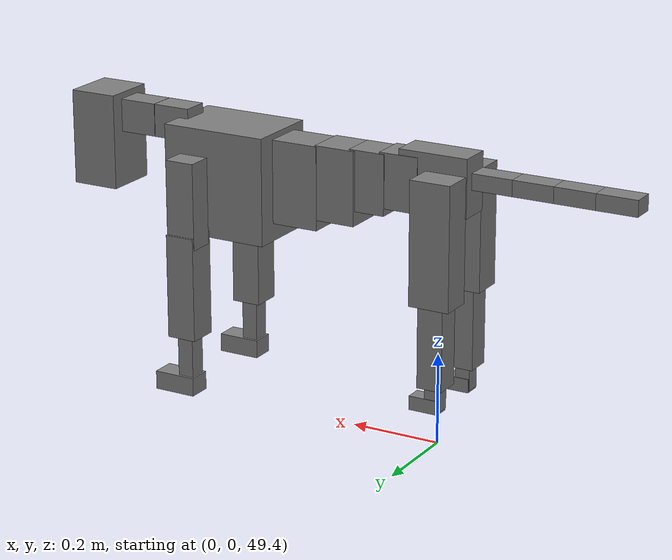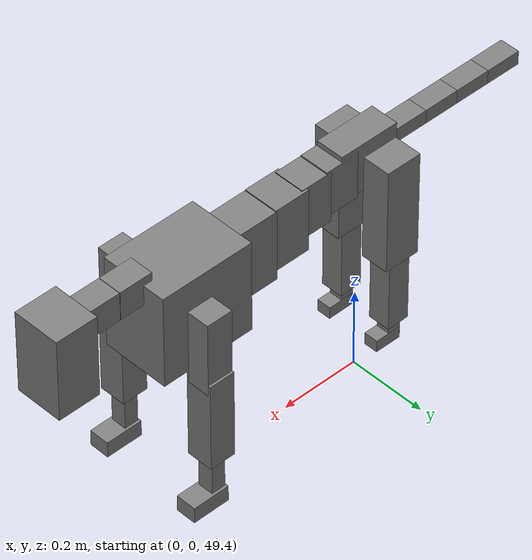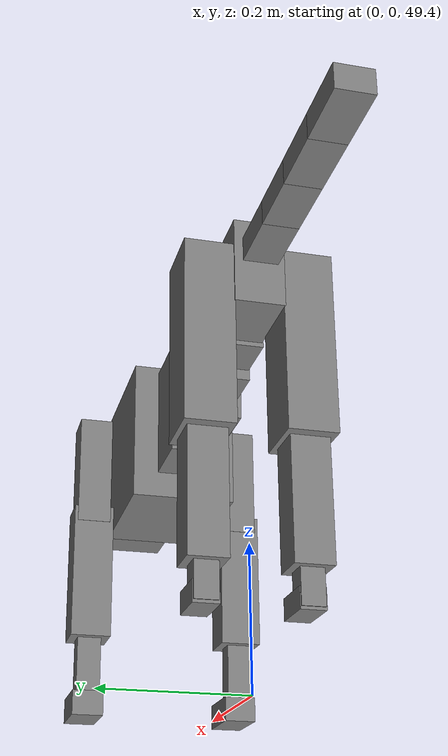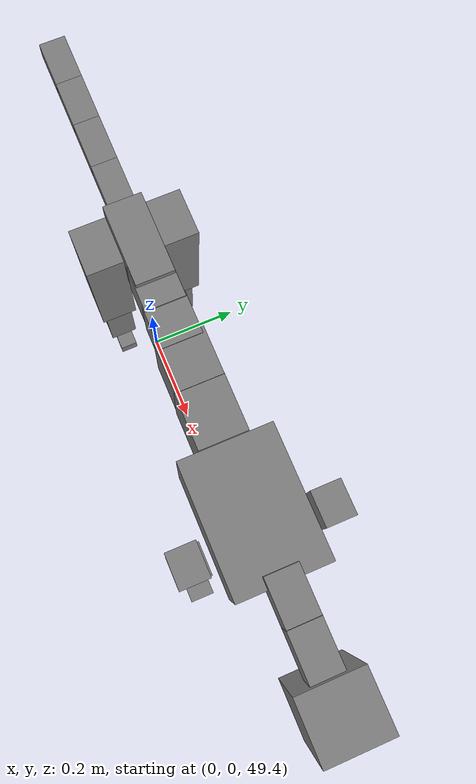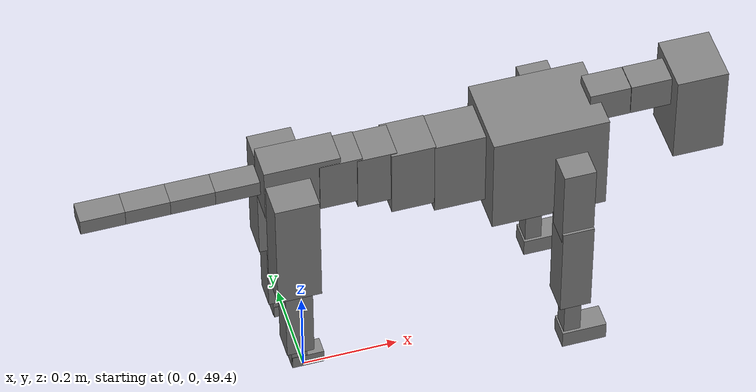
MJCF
<mujoco model="dog">

    <default>
        <joint armature="0.02" stiffness="1" damping="0.2" limited="true"/>
        <geom condim="3" friction="1 0.05 0.05" margin="0.01"/>
        <motor ctrllimited="true" ctrlrange="-1.0 1.0" forcelimited="true" gear="50"/>
    </default>

    <compiler inertiafromgeom="true" angle="radian"/>

    <option timestep="0.016" iterations="50" tolerance="1e-10" solver="Newton" jacobian="dense" cone="pyramidal"/>

    <size nconmax="20000" njmax="60000" nstack="5000000"/>
    <visual>
        <map force="0.1" zfar="30"/>
        <rgba haze="0.15 0.25 0.35 1"/>
        <quality shadowsize="2048"/>
        <global offwidth="800" offheight="800"/>
    </visual>

    <asset>
        <texture type="skybox" builtin="gradient" rgb1="0.3 0.5 0.7" rgb2="0 0 0" width="512" height="512"/>
        <texture name="texplane" type="2d" builtin="checker" rgb1=".2 .3 .4" rgb2=".1 0.15 0.2" width="512" height="512"
                 mark="cross" markrgb=".8 .8 .8"/>
        <texture name="texgeom" type="cube" builtin="flat" mark="cross" width="127" height="1278" rgb1="0.8 0.6 0.4"
                 rgb2="0.8 0.6 0.4" markrgb="1 1 1" random="0.01"/>

        <material name="matplane" reflectance="0.3" texture="texplane" texrepeat="1 1" texuniform="true"/>
        <material name="matgeom" texture="texgeom" texuniform="true" rgba="0.8 0.6 .4 1"/>
    </asset>

    <worldbody>
        <geom name="floor" pos="0 0 0" size="0 0 .25" type="plane" material="matplane" condim="3"/>

        <light directional="false" diffuse=".2 .2 .2" specular="0 0 0" pos="0 0 5" dir="0 0 -1" castshadow="false"/>
        <light mode="targetbodycom" target="torso" directional="false" diffuse=".8 .8 .8" specular="0.3 0.3 0.3"
               pos="0 0 4.0" dir="0 0 -1"/>

        <body name="root" pos="0 0 50">
            <freejoint name="root_1"/>
            <geom type="box" pos="0 0 -0.02" size="0.0774  0.0358  0.063" density="2030"/>

            <body name="spine1" pos="0.054 0 0">
                <joint name="spine1_y" axis="0 1 0" range="0 0.7" limited="true"/>
                <geom type="box" pos="0.02375 0 -0.03" size="0.04375  0.0375  0.05985" density="2030"/>

                <body name="spine2" pos="0.0612 0 0">
                    <joint name="spine2_y" axis="0 1 0" range="-0.15 0.15" limited="true"/>
                    <geom type="box" pos="0.03555  0  -0.04" size="0.04055  0.039  0.06615" density="2030"/>

                    <body name="spine3" pos="0.0730 0 0">
                        <joint name="spine3_y" axis="0 1 0" range="-0.15 0.15" limited="true"/>
                        <geom type="box" pos="0.03555  0  -0.057" size="0.04555  0.0445  0.081" density="2030"/>

                        <body name="spine4" pos="0.0780 0 0">
                            <joint name="spine4_y" axis="0 1 0" range="-0.15 0.15" limited="true"/>
                            <geom type="box" pos="0.05265  0  -0.07" size="0.05265  0.045  0.09135" density="2030"/>

                            <body name="torso" pos="0.1082 0 0">
                                <joint name="torso_y" axis="0 1 0" range="-0.15 0.15" limited="true"/>
                                <geom type="box" pos="0.11925  0  -0.085" size="0.11925  0.085  0.11745"
                                      density="2030"/>

                                <body name="neck1" pos="0.2160  0   0.0180">
                                    <joint name="neck1_y" axis="0 1 0" range="-1.2  -1" limited="true"/>
                                    <geom type="box" pos="0.0423  0  0" size="0.0423  0.03  0.036" density="2325"/>

                                    <body name="neck2" pos="0.0853  0  0">
                                        <joint name="neck2_y" axis="0 1 0" range="0.1  0" limited="true"/>
                                        <geom type="box" pos="0.0423  0  0" size="0.0423  0.03  0.036" density="2325"/>

                                        <body name="head" pos="0.0853  0  0">
                                            <joint name="head_y" axis="0 1 0" range="-0.3  -0.2" limited="true"/>
                                            <geom type="box" pos="0.0531  0  -0.055" size="0.0531  0.06  0.1044"
                                                  density="4030"/>

                                        </body>
                                    </body>
                                </body>

                                <body name="front_shoulder" pos="0.156  0   -0.0480">
                                    <joint name="front_shoulder_y" axis="0 1 0" range="-1 1.5" limited="true"/>
                                    <geom type="box" pos="0 0.13 -0.0681" size="0.0329  0.0281  0.0947" density="1158"/>
                                    <geom type="box" pos="0 -0.13 -0.0681" size="0.0329  0.0281  0.0947"
                                          density="1158"/>

                                    <body name="front_elbow" pos="0  0  -0.1362">
                                        <joint name="front_elbow_y" axis="0 1 0" range="-2 0" limited="true"/>
                                        <geom type="box" pos="0 0.13 -0.1141" size="0.0327  0.0334  0.1141"
                                              density="1081"/>
                                        <geom type="box" pos="0 -0.13 -0.1141" size="0.0327  0.0334  0.1141"
                                              density="1081"/>

                                        <body name="front_wrist" pos="0  0  -0.2282">
                                            <joint name="front_wrist_y" axis="0 1 0" range="-0.2 0" limited="true"/>
                                            <geom type="box" pos="0 0.13 -0.0522" size="0.0177  0.0197  0.0654"
                                                  density="1664"/>
                                            <geom type="box" pos="0 -0.13 -0.0522" size="0.0177  0.0197  0.0654"
                                                  density="1664"/>

                                            <body name="front_finger_end" pos="0  0  -0.1044">
                                                <joint name="front_finger_y" axis="0 1 0" range="-0.4 1"
                                                       limited="true"/>
                                                <geom type="box" pos="0.0256  0.13  -0.0053"
                                                      size="0.0470  0.0256  0.0203" density="1515"/>
                                                <geom type="box" pos="0.0256  -0.13  -0.0053"
                                                      size="0.0470  0.0256  0.0203" density="1515"/>

                                            </body>

                                        </body>
                                    </body>
                                </body>

                            </body>
                        </body>
                    </body>
                </body>
            </body>

            <body name="back_hip" pos="-0.03 0 -0.018">
                <joint name="back_hip_y" axis="0 1 0" range="-1.5 0.3" limited="true"/>
                <geom type="box" pos="0 0.07 -0.1113" size="0.0452  0.0354  0.1341" density="1154"/>
                <geom type="box" pos="0 -0.07 -0.1113" size="0.0452  0.0354  0.1341" density="1154"/>

                <body name="back_knee" pos="0  0  -0.2227">
                    <joint name="back_knee_y" axis="0 1 0" range="0 2.8" limited="true"/>
                    <geom type="box" pos="0 0.07 -0.0923" size="0.0283  0.0279  0.1078" density="1227"/>
                    <geom type="box" pos="0 -0.07 -0.0923" size="0.0283  0.0279  0.1078" density="1227"/>

                    <body name="back_ankle" pos="0  0  -0.1846">
                        <joint name="back_ankle_y" axis="0 1 0" range="-2.2 0" limited="true"/>
                        <geom type="box" pos="0 0.07 -0.0280" size="0.0167  0.0167  0.0392" density="1284"/>
                        <geom type="box" pos="0 -0.07 -0.0280" size="0.0167  0.0167  0.0392" density="1284"/>

                        <body name="back_toe_end" pos="0  0  -0.0560">
                            <joint name="back_toe_y" axis="0 1 0" range="-0.4 1" limited="true"/>
                            <geom type="box" pos="0.0180  0.07  -0.0003" size="0.0331  0.0180  0.0153" density="1515"/>
                            <geom type="box" pos="0.0180  -0.07  -0.0003" size="0.0331  0.0180  0.0153" density="1515"/>

                        </body>
                    </body>
                </body>
            </body>

            <body name="tail1" pos="-0.074 0 -0.006">
                <joint name="tail1_y" axis="0 1 0" range="-0.2 0.2" limited="true"/>
                <geom type="box" pos="-0.0536  0  0" size="0.045  0.025  0.0175" density="1587"/>

                <body name="tail2" pos="-0.09 0 0">
                    <joint name="tail2_y" axis="0 1 0" range="-0.2 0.2" limited="true"/>
                    <geom type="box" pos="-0.0536  0  0" size="0.045  0.025  0.0175" density="1587"/>

                    <body name="tail3" pos="-0.09 0 0">
                        <joint name="tail3_y" axis="0 1 0" range="-0.2 0.2" limited="true"/>
                        <geom type="box" pos="-0.0536  0  0" size="0.045  0.025  0.0175" density="1587"/>

                        <body name="tail4" pos="-0.09 0 0">
                            <joint name="tail4_y" axis="0 1 0" range="-0.2 0.2" limited="true"/>
                            <geom type="box" pos="-0.0536  0  0" size="0.045  0.025  0.0175" density="1587"/>

                        </body>
                    </body>
                </body>
            </body>
        </body>
    </worldbody>

    <actuator>
        <motor joint="spine1_y" forcerange="-150 150     "/>
        <motor joint="spine2_y" forcerange="-150 150     "/>
        <motor joint="spine3_y" forcerange="-150 150     "/>
        <motor joint="spine4_y" forcerange="-150 150     "/>
        <motor joint="torso_y" forcerange="-150 150     "/>
        <motor joint="neck1_y" forcerange="-100 100       "/>
        <motor joint="neck2_y" forcerange="-100 100       "/>
        <motor joint="head_y" forcerange="-150 150       "/>
        <motor joint="front_shoulder_y" forcerange="-177.18 110.41"/>
        <motor joint="front_elbow_y" forcerange="-195.66 147.54"/>
        <motor joint="front_wrist_y" forcerange="-86.32 71.12"/>
        <motor joint="front_finger_y" forcerange="-24.21 72.41"/>
        <motor joint="back_hip_y" forcerange="-323.65 348.94"/>
        <motor joint="back_knee_y" forcerange="-352.02 253.72"/>
        <motor joint="back_angle_y" forcerange="-80.00 87.62"/>
        <motor joint="back_toe_y" forcerange="-40.51 23.84"/>
        <motor joint="tail1_y" forcerange="-50 50     "/>
        <motor joint="tail2_y" forcerange="-50 50     "/>
        <motor joint="tail3_y" forcerange="-50 50     "/>
        <motor joint="tail4_y" forcerange="-50 50     "/>
    </actuator>
</mujoco>
